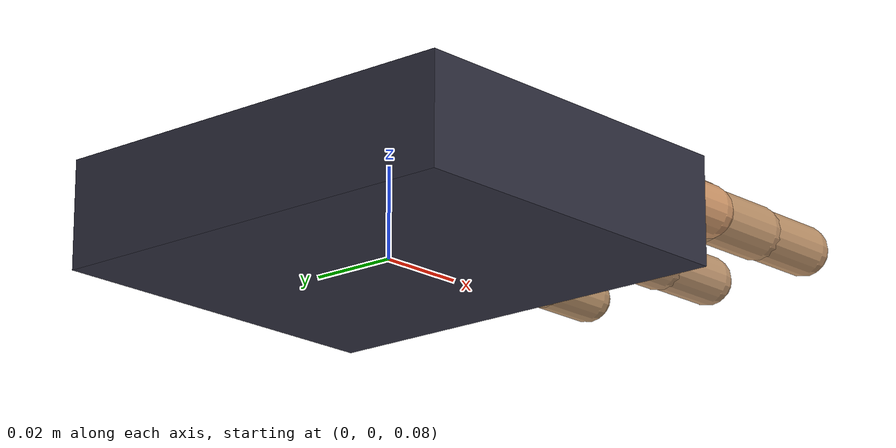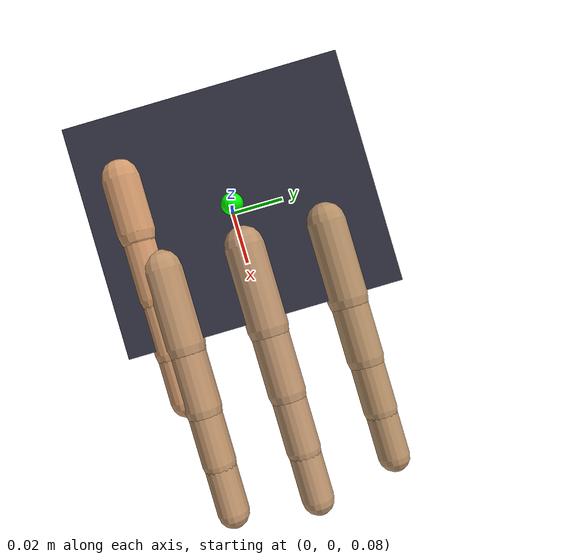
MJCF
<mujoco model="dexplay_allegro_phase0">
  <compiler angle="radian"/>
  <option timestep="0.0025" integrator="RK4" gravity="0 0 -1.5" iterations="30" ls_iterations="20"/>
  <size njmax="2000" nconmax="2000"/>

  <default>
    <joint damping="0.06" armature="0.005" limited="true"/>
    <geom condim="6" friction="1.0 0.05 0.002"/>
  </default>

  <worldbody>
    <light pos="0 0 1.2"/>

    <body name="palm" pos="0 0 0.09">
      <geom name="palm_geom" type="box" size="0.042 0.050 0.012" rgba="0.18 0.18 0.24 1" mass="0.25"/>
      <site name="palm_center" pos="0 0 0.014" size="0.004" rgba="0 1 0 1"/>

      <body name="thumb_base" pos="-0.020 -0.035 0.008">
        <joint name="thumb_0" type="hinge" axis="0 0 1" range="-0.50 0.80"/>
        <geom type="capsule" fromto="0 0 0 0.020 0.000 0.000" size="0.008" rgba="0.82 0.60 0.42 1" mass="0.03"/>
        <body pos="0.020 0.000 0.000">
          <joint name="thumb_1" type="hinge" axis="0 1 0" range="-0.30 1.20"/>
          <geom type="capsule" fromto="0 0 0 0.024 0.000 0.000" size="0.007" rgba="0.82 0.60 0.42 1" mass="0.02"/>
          <body pos="0.024 0.000 0.000">
            <joint name="thumb_2" type="hinge" axis="0 1 0" range="-0.20 1.40"/>
            <geom type="capsule" fromto="0 0 0 0.020 0.000 0.000" size="0.0065" rgba="0.82 0.60 0.42 1" mass="0.016"/>
            <body pos="0.020 0.000 0.000">
              <joint name="thumb_3" type="hinge" axis="0 1 0" range="-0.20 1.30"/>
              <geom type="capsule" fromto="0 0 0 0.018 0.000 0.000" size="0.006" rgba="0.82 0.60 0.42 1" mass="0.012"/>
            </body>
          </body>
        </body>
      </body>

      <body name="index_base" pos="0.015 -0.030 0.010">
        <joint name="index_0" type="hinge" axis="0 0 1" range="-0.40 0.40"/>
        <geom type="capsule" fromto="0 0 0 0.028 0 0" size="0.0075" rgba="0.75 0.58 0.42 1" mass="0.025"/>
        <body pos="0.028 0 0">
          <joint name="index_1" type="hinge" axis="0 1 0" range="-0.20 1.40"/>
          <geom type="capsule" fromto="0 0 0 0.023 0 0" size="0.0068" rgba="0.75 0.58 0.42 1" mass="0.019"/>
          <body pos="0.023 0 0">
            <joint name="index_2" type="hinge" axis="0 1 0" range="-0.20 1.40"/>
            <geom type="capsule" fromto="0 0 0 0.020 0 0" size="0.0062" rgba="0.75 0.58 0.42 1" mass="0.014"/>
            <body pos="0.020 0 0">
              <joint name="index_3" type="hinge" axis="0 1 0" range="-0.20 1.30"/>
              <geom type="capsule" fromto="0 0 0 0.018 0 0" size="0.0058" rgba="0.75 0.58 0.42 1" mass="0.010"/>
            </body>
          </body>
        </body>
      </body>

      <body name="middle_base" pos="0.015 0.000 0.010">
        <joint name="middle_0" type="hinge" axis="0 0 1" range="-0.40 0.40"/>
        <geom type="capsule" fromto="0 0 0 0.030 0 0" size="0.0075" rgba="0.74 0.58 0.43 1" mass="0.026"/>
        <body pos="0.030 0 0">
          <joint name="middle_1" type="hinge" axis="0 1 0" range="-0.20 1.40"/>
          <geom type="capsule" fromto="0 0 0 0.024 0 0" size="0.0068" rgba="0.74 0.58 0.43 1" mass="0.019"/>
          <body pos="0.024 0 0">
            <joint name="middle_2" type="hinge" axis="0 1 0" range="-0.20 1.40"/>
            <geom type="capsule" fromto="0 0 0 0.021 0 0" size="0.0062" rgba="0.74 0.58 0.43 1" mass="0.014"/>
            <body pos="0.021 0 0">
              <joint name="middle_3" type="hinge" axis="0 1 0" range="-0.20 1.30"/>
              <geom type="capsule" fromto="0 0 0 0.018 0 0" size="0.0058" rgba="0.74 0.58 0.43 1" mass="0.010"/>
            </body>
          </body>
        </body>
      </body>

      <body name="ring_base" pos="0.015 0.030 0.010">
        <joint name="ring_0" type="hinge" axis="0 0 1" range="-0.40 0.40"/>
        <geom type="capsule" fromto="0 0 0 0.028 0 0" size="0.0073" rgba="0.72 0.57 0.41 1" mass="0.024"/>
        <body pos="0.028 0 0">
          <joint name="ring_1" type="hinge" axis="0 1 0" range="-0.20 1.40"/>
          <geom type="capsule" fromto="0 0 0 0.022 0 0" size="0.0066" rgba="0.72 0.57 0.41 1" mass="0.018"/>
          <body pos="0.022 0 0">
            <joint name="ring_2" type="hinge" axis="0 1 0" range="-0.20 1.40"/>
            <geom type="capsule" fromto="0 0 0 0.019 0 0" size="0.0060" rgba="0.72 0.57 0.41 1" mass="0.013"/>
            <body pos="0.019 0 0">
              <joint name="ring_3" type="hinge" axis="0 1 0" range="-0.20 1.30"/>
              <geom type="capsule" fromto="0 0 0 0.017 0 0" size="0.0056" rgba="0.72 0.57 0.41 1" mass="0.009"/>
            </body>
          </body>
        </body>
      </body>
    </body>

  </worldbody>

  <keyframe>
    <key name="default" qpos="0.25 0.60 0.70 0.55 0.00 0.50 0.60 0.55 0.05 0.55 0.65 0.55 0.08 0.58 0.68 0.58"/>
  </keyframe>
</mujoco>
